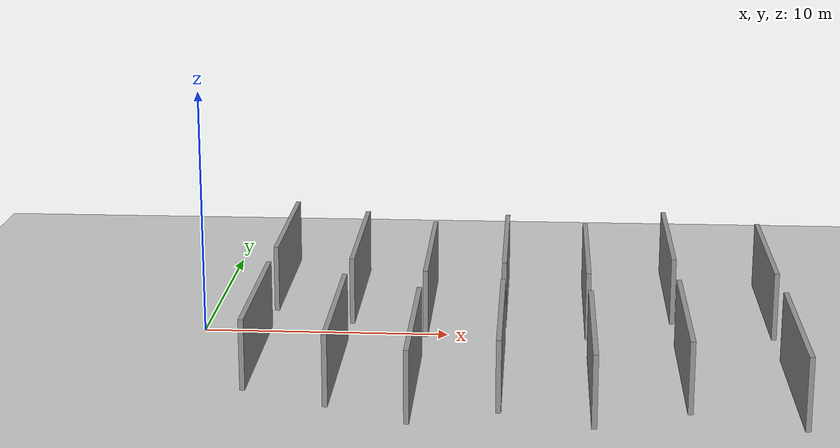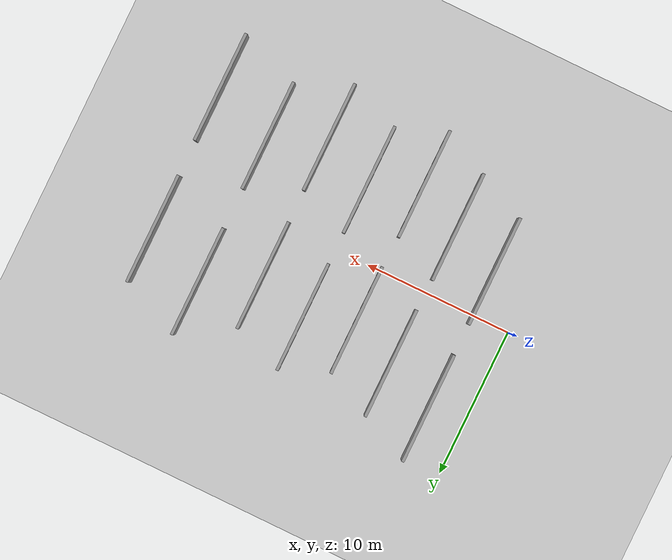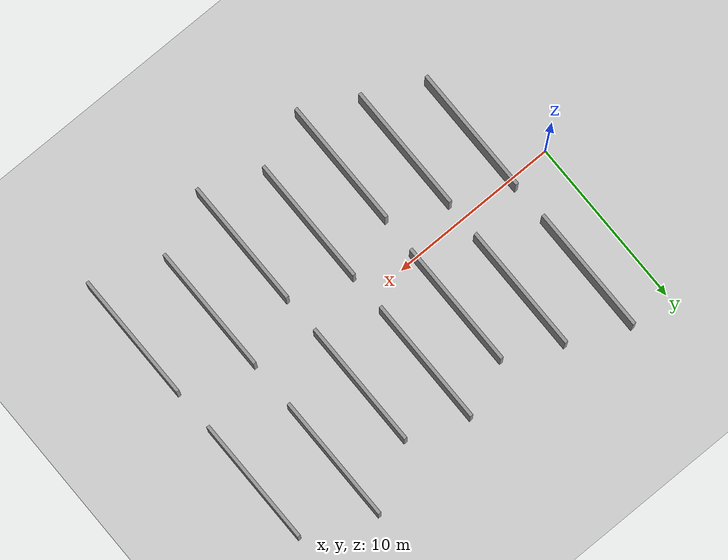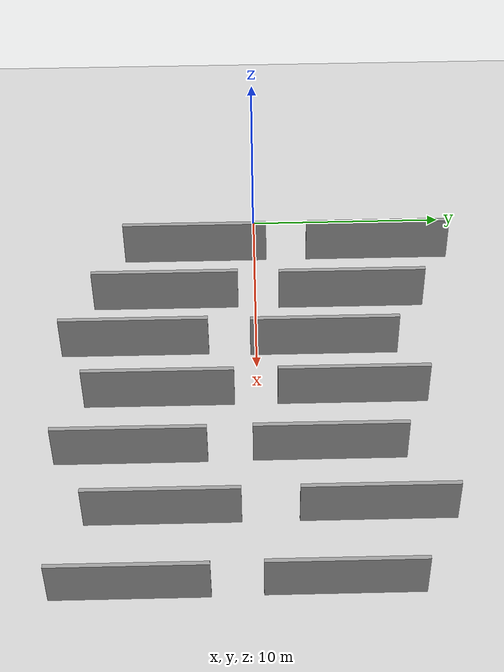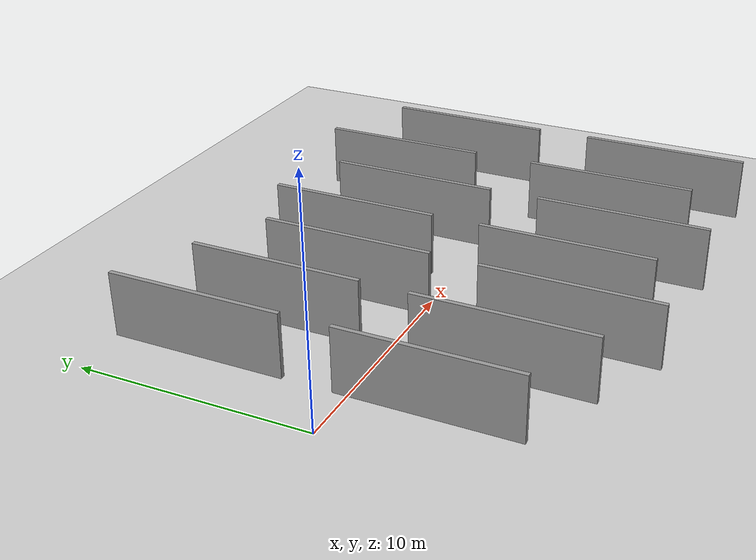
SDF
<sdf version="1.7">
 <world name="default">
  <light name="sun" type="directional">
   <pose>0 0 10 0 -0 0</pose>
   <diffuse>0.8 0.8 0.8 1</diffuse>
   <specular>0.2 0.2 0.2 1</specular>
   <attenuation>
    <range>1000</range>
    <constant>0.9</constant>
    <linear>0.01</linear>
    <quadratic>0.001</quadratic>
   </attenuation>
   <direction>-0.5 0.1 -0.9</direction>
   <spot><inner_angle>0</inner_angle><outer_angle>0</outer_angle><falloff>0</falloff></spot>
  </light>
  <model name="ground_plane">
   <static>1</static>
   <link name="link">
    <collision name="collision">
     <geometry><plane><normal>0 0 1</normal><size>100 100</size></plane></geometry>
     <surface><friction><ode><mu>100</mu><mu2>50</mu2></ode></friction></surface>
    </collision>
    <visual name="visual">
     <cast_shadows>0</cast_shadows>
     <geometry><plane><normal>0 0 1</normal><size>100 100</size></plane></geometry>
     <material>
      <script><uri>file://media/materials/scripts/gazebo.material</uri><name>Gazebo/Grey</name></script>
     </material>
    </visual>
   </link>
  </model>
  <gravity>0 0 -9.8</gravity>
  <magnetic_field>6e-06 2.3e-05 -4.2e-05</magnetic_field>
  <atmosphere type="adiabatic"/>
  <physics type="ode">
   <max_step_size>0.001</max_step_size>
   <real_time_factor>1</real_time_factor>
   <real_time_update_rate>1000</real_time_update_rate>
  </physics>
  <scene><ambient>0.4 0.4 0.4 1</ambient><background>0.7 0.7 0.7 1</background><shadows>1</shadows></scene>
  <spherical_coordinates>
   <surface_model>EARTH_WGS84</surface_model>
   <latitude_deg>0</latitude_deg>
   <longitude_deg>0</longitude_deg>
   <elevation>0</elevation>
   <heading_deg>0</heading_deg>
  </spherical_coordinates>
  <model name="ball_bearing">
   <link name="link">
    <pose>0 0 0.003 0 -0 0</pose>
    <inertial>
     <mass>0.0011</mass>
     <inertia>
      <ixx>3.96e-09</ixx>
      <ixy>0</ixy>
      <ixz>0</ixz>
      <iyy>3.96e-09</iyy>
      <iyz>0</iyz>
      <izz>3.96e-09</izz>
     </inertia>
    </inertial>
    <collision name="collision">
     <geometry><sphere><radius>0.003</radius></sphere></geometry>
     <surface>
      <contact>
       <poissons_ratio>0.305</poissons_ratio>
       <elastic_modulus>2e+11</elastic_modulus>
       <ode><kp>100000</kp><kd>100</kd><max_vel>100</max_vel><min_depth>0.001</min_depth></ode>
      </contact>
      <friction>
       <torsional>
        <coefficient>1</coefficient>
        <use_patch_radius>0</use_patch_radius>
        <surface_radius>0.01</surface_radius>
       </torsional>
      </friction>
     </surface>
    </collision>
    <visual name="visual">
     <geometry><sphere><radius>0.003</radius></sphere></geometry>
     <material>
      <script><uri>file://media/materials/scripts/gazebo.material</uri><name>Gazebo/Grey</name></script>
     </material>
    </visual>
    <velocity_decay><linear>0</linear><angular>0.005</angular></velocity_decay>
   </link>
   <pose>-5.51195 0.740414 -0.001 0 -0 0</pose>
  </model>
  <model name="grey_wall">
   <static>1</static>
   <link name="link">
    <pose>0 0 1.4 0 -0 0</pose>
    <collision name="collision"><geometry><box><size>7.5 0.2 2.8</size></box></geometry></collision>
    <visual name="visual">
     <cast_shadows>0</cast_shadows>
     <geometry><box><size>7.5 0.2 2.8</size></box></geometry>
     <material>
      <script>
       <uri>model://grey_wall/materials/scripts</uri>
       <uri>model://grey_wall/materials/textures</uri>
       <name>vrc/grey_wall</name>
      </script>
     </material>
    </visual>
   </link>
   <pose>2.58534 6.49824 0 0 -0 1.5707</pose>
  </model>
  <model name="grey_wall_clone">
   <static>1</static>
   <link name="link">
    <pose>0 0 1.4 0 -0 0</pose>
    <collision name="collision"><geometry><box><size>7.5 0.2 2.8</size></box></geometry></collision>
    <visual name="visual">
     <cast_shadows>0</cast_shadows>
     <geometry><box><size>7.5 0.2 2.8</size></box></geometry>
     <material>
      <script>
       <uri>model://grey_wall/materials/scripts</uri>
       <uri>model://grey_wall/materials/textures</uri>
       <name>vrc/grey_wall</name>
      </script>
     </material>
    </visual>
   </link>
   <pose>2.58713 -3.11961 0 0 -0 1.5707</pose>
  </model>
  <model name="grey_wall_clone_0">
   <static>1</static>
   <link name="link">
    <pose>0 0 1.4 0 -0 0</pose>
    <collision name="collision"><geometry><box><size>7.5 0.2 2.8</size></box></geometry></collision>
    <visual name="visual">
     <cast_shadows>0</cast_shadows>
     <geometry><box><size>7.5 0.2 2.8</size></box></geometry>
     <material>
      <script>
       <uri>model://grey_wall/materials/scripts</uri>
       <uri>model://grey_wall/materials/textures</uri>
       <name>vrc/grey_wall</name>
      </script>
     </material>
    </visual>
   </link>
   <pose>5.95438 4.97278 0 0 -0 1.5707</pose>
  </model>
  <model name="grey_wall_clone_2">
   <static>1</static>
   <link name="link">
    <pose>0 0 1.4 0 -0 0</pose>
    <collision name="collision"><geometry><box><size>7.5 0.2 2.8</size></box></geometry></collision>
    <visual name="visual">
     <cast_shadows>0</cast_shadows>
     <geometry><box><size>7.5 0.2 2.8</size></box></geometry>
     <material>
      <script>
       <uri>model://grey_wall/materials/scripts</uri>
       <uri>model://grey_wall/materials/textures</uri>
       <name>vrc/grey_wall</name>
      </script>
     </material>
    </visual>
   </link>
   <pose>8.99244 -6.16776 0 0 -0 1.5707</pose>
  </model>
  <model name="grey_wall_clone_3">
   <static>1</static>
   <link name="link">
    <pose>0 0 1.4 0 -0 0</pose>
    <collision name="collision"><geometry><box><size>7.5 0.2 2.8</size></box></geometry></collision>
    <visual name="visual">
     <cast_shadows>0</cast_shadows>
     <geometry><box><size>7.5 0.2 2.8</size></box></geometry>
     <material>
      <script>
       <uri>model://grey_wall/materials/scripts</uri>
       <uri>model://grey_wall/materials/textures</uri>
       <name>vrc/grey_wall</name>
      </script>
     </material>
    </visual>
   </link>
   <pose>9.09593 3.44951 0 0 -0 1.5707</pose>
  </model>
  <model name="grey_wall_clone_5">
   <static>1</static>
   <link name="link">
    <pose>0 0 1.4 0 -0 0</pose>
    <collision name="collision"><geometry><box><size>7.5 0.2 2.8</size></box></geometry></collision>
    <visual name="visual">
     <cast_shadows>0</cast_shadows>
     <geometry><box><size>7.5 0.2 2.8</size></box></geometry>
     <material>
      <script>
       <uri>model://grey_wall/materials/scripts</uri>
       <uri>model://grey_wall/materials/textures</uri>
       <name>vrc/grey_wall</name>
      </script>
     </material>
    </visual>
   </link>
   <pose>12.2591 4.7628 0 0 -0 1.5707</pose>
  </model>
  <model name="grey_wall_clone_6">
   <static>1</static>
   <link name="link">
    <pose>0 0 1.4 0 -0 0</pose>
    <collision name="collision"><geometry><box><size>7.5 0.2 2.8</size></box></geometry></collision>
    <visual name="visual">
     <cast_shadows>0</cast_shadows>
     <geometry><box><size>7.5 0.2 2.8</size></box></geometry>
     <material>
      <script>
       <uri>model://grey_wall/materials/scripts</uri>
       <uri>model://grey_wall/materials/textures</uri>
       <name>vrc/grey_wall</name>
      </script>
     </material>
    </visual>
   </link>
   <pose>12.2593 -4.88724 0 0 -0 1.5707</pose>
  </model>
  <model name="grey_wall_clone_8">
   <static>1</static>
   <link name="link">
    <pose>0 0 1.4 0 -0 0</pose>
    <collision name="collision"><geometry><box><size>7.5 0.2 2.8</size></box></geometry></collision>
    <visual name="visual">
     <cast_shadows>0</cast_shadows>
     <geometry><box><size>7.5 0.2 2.8</size></box></geometry>
     <material>
      <script>
       <uri>model://grey_wall/materials/scripts</uri>
       <uri>model://grey_wall/materials/textures</uri>
       <name>vrc/grey_wall</name>
      </script>
     </material>
    </visual>
   </link>
   <pose>15.683 3.47904 0 0 -0 1.5707</pose>
  </model>
  <model name="grey_wall_clone_9">
   <static>1</static>
   <link name="link">
    <pose>0 0 1.4 0 -0 0</pose>
    <collision name="collision"><geometry><box><size>7.5 0.2 2.8</size></box></geometry></collision>
    <visual name="visual">
     <cast_shadows>0</cast_shadows>
     <geometry><box><size>7.5 0.2 2.8</size></box></geometry>
     <material>
      <script>
       <uri>model://grey_wall/materials/scripts</uri>
       <uri>model://grey_wall/materials/textures</uri>
       <name>vrc/grey_wall</name>
      </script>
     </material>
    </visual>
   </link>
   <pose>15.713 -6.21747 0 0 -0 1.5707</pose>
  </model>
  <model name="grey_wall_clone_10">
   <static>1</static>
   <link name="link">
    <pose>0 0 1.4 0 -0 0</pose>
    <collision name="collision"><geometry><box><size>7.5 0.2 2.8</size></box></geometry></collision>
    <visual name="visual">
     <cast_shadows>0</cast_shadows>
     <geometry><box><size>7.5 0.2 2.8</size></box></geometry>
     <material>
      <script>
       <uri>model://grey_wall/materials/scripts</uri>
       <uri>model://grey_wall/materials/textures</uri>
       <name>vrc/grey_wall</name>
      </script>
     </material>
    </visual>
   </link>
   <pose>19.2334 5.62884 0 0 -0 1.5707</pose>
  </model>
  <model name="grey_wall_clone_12">
   <static>1</static>
   <link name="link">
    <pose>0 0 1.4 0 -0 0</pose>
    <collision name="collision"><geometry><box><size>7.5 0.2 2.8</size></box></geometry></collision>
    <visual name="visual">
     <cast_shadows>0</cast_shadows>
     <geometry><box><size>7.5 0.2 2.8</size></box></geometry>
     <material>
      <script>
       <uri>model://grey_wall/materials/scripts</uri>
       <uri>model://grey_wall/materials/textures</uri>
       <name>vrc/grey_wall</name>
      </script>
     </material>
    </visual>
   </link>
   <pose>19.2446 -4.61682 0 0 -0 1.5707</pose>
  </model>
  <model name="grey_wall_clone_13">
   <static>1</static>
   <link name="link">
    <pose>0 0 1.4 0 -0 0</pose>
    <collision name="collision"><geometry><box><size>7.5 0.2 2.8</size></box></geometry></collision>
    <visual name="visual">
     <cast_shadows>0</cast_shadows>
     <geometry><box><size>7.5 0.2 2.8</size></box></geometry>
     <material>
      <script>
       <uri>model://grey_wall/materials/scripts</uri>
       <uri>model://grey_wall/materials/textures</uri>
       <name>vrc/grey_wall</name>
      </script>
     </material>
    </visual>
   </link>
   <pose>23.2363 3.8588 0 0 -0 1.5707</pose>
  </model>
  <model name="grey_wall_clone_14">
   <static>1</static>
   <link name="link">
    <pose>0 0 1.4 0 -0 0</pose>
    <collision name="collision"><geometry><box><size>7.5 0.2 2.8</size></box></geometry></collision>
    <visual name="visual">
     <cast_shadows>0</cast_shadows>
     <geometry><box><size>7.5 0.2 2.8</size></box></geometry>
     <material>
      <script>
       <uri>model://grey_wall/materials/scripts</uri>
       <uri>model://grey_wall/materials/textures</uri>
       <name>vrc/grey_wall</name>
      </script>
     </material>
    </visual>
   </link>
   <pose>23.2899 -6.06199 0 0 -0 1.5707</pose>
  </model>
  <model name="grey_wall_clone_0_clone">
   <static>1</static>
   <link name="link">
    <pose>0 0 1.4 0 -0 0</pose>
    <collision name="collision"><geometry><box><size>7.5 0.2 2.8</size></box></geometry></collision>
    <visual name="visual">
     <cast_shadows>0</cast_shadows>
     <geometry><box><size>7.5 0.2 2.8</size></box></geometry>
     <material>
      <script>
       <uri>model://grey_wall/materials/scripts</uri>
       <uri>model://grey_wall/materials/textures</uri>
       <name>vrc/grey_wall</name>
      </script>
     </material>
    </visual>
   </link>
   <pose>5.88407 -4.64075 0 0 -0 1.5707</pose>
  </model>
 </world>
</sdf>
